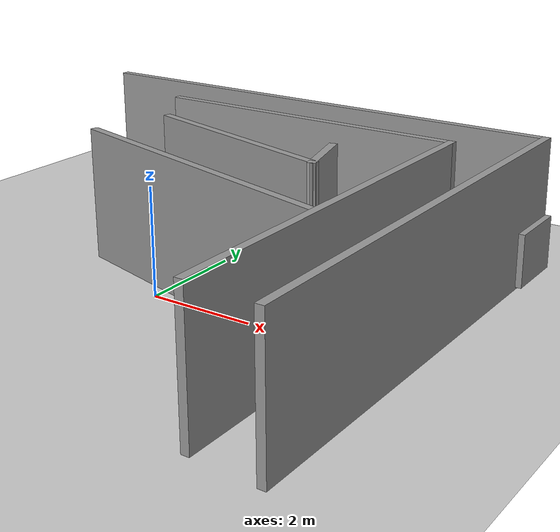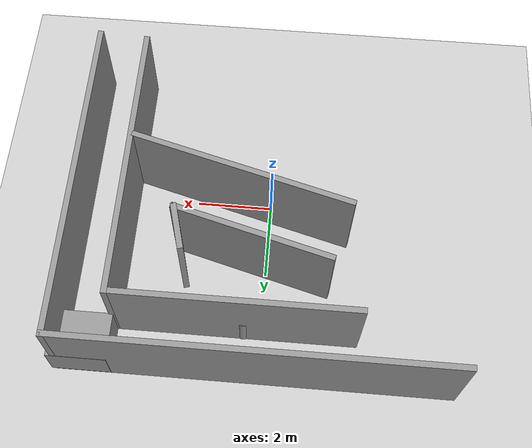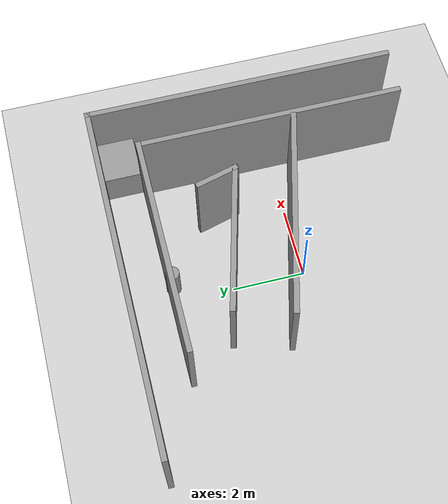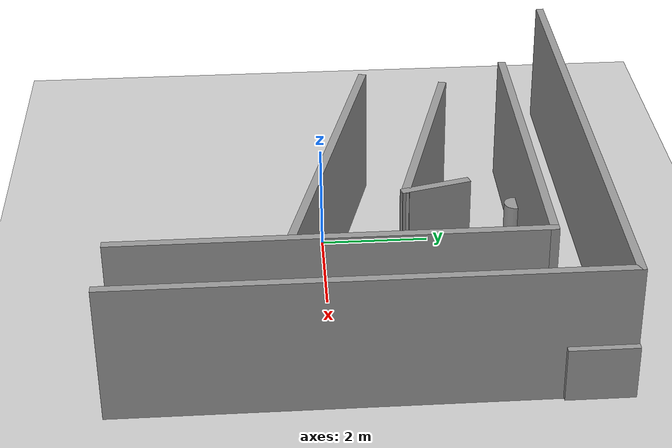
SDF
<sdf version="1.7">
 <world name="default">
  <model name="ground_plane">
   <static>1</static>
   <link name="link">
    <collision name="collision">
     <geometry><plane><normal>0 0 1</normal><size>100 100</size></plane></geometry>
     <surface>
      <contact><collide_bitmask>65535</collide_bitmask></contact>
      <friction><ode><mu>100</mu><mu2>50</mu2></ode></friction>
     </surface>
    </collision>
    <visual name="visual">
     <cast_shadows>0</cast_shadows>
     <geometry><plane><normal>0 0 1</normal><size>100 100</size></plane></geometry>
     <material>
      <script><uri>file://media/materials/scripts/gazebo.material</uri><name>Gazebo/Grey</name></script>
     </material>
    </visual>
   </link>
  </model>
  <model name="map10x10">
   <pose>0.061304 -0.054192 0 0 -0 0</pose>
   <link name="Wall_21">
    <collision name="Wall_21_Collision">
     <geometry><box><size>10 0.15 2.5</size></box></geometry>
     <pose>0 0 1.25 0 -0 0</pose>
    </collision>
    <visual name="Wall_21_Visual">
     <pose>0 0 1.25 0 -0 0</pose>
     <geometry><box><size>10 0.15 2.5</size></box></geometry>
     <material>
      <script><uri>file://media/materials/scripts/gazebo.material</uri><name>Gazebo/Grey</name></script>
      <ambient>1 1 1 1</ambient>
     </material>
     <meta><layer>0</layer></meta>
    </visual>
    <pose>0 4.925 0 0 -0 0</pose>
   </link>
   <link name="Wall_22">
    <collision name="Wall_22_Collision">
     <geometry><box><size>8.75 0.15 2.5</size></box></geometry>
     <pose>0 0 1.25 0 -0 0</pose>
    </collision>
    <visual name="Wall_22_Visual">
     <pose>0 0 1.25 0 -0 0</pose>
     <geometry><box><size>8.75 0.15 2.5</size></box></geometry>
     <material>
      <script><uri>file://media/materials/scripts/gazebo.material</uri><name>Gazebo/Grey</name></script>
      <ambient>1 1 1 1</ambient>
     </material>
     <meta><layer>0</layer></meta>
    </visual>
    <pose>4.925 0.625 0 0 -0 -1.5708</pose>
   </link>
   <link name="Wall_42">
    <collision name="Wall_42_Collision">
     <geometry><box><size>7.5 0.15 2.5</size></box></geometry>
     <pose>0 0 1.25 0 -0 0</pose>
    </collision>
    <visual name="Wall_42_Visual">
     <pose>0 0 1.25 0 -0 0</pose>
     <geometry><box><size>7.5 0.15 2.5</size></box></geometry>
     <material>
      <script><uri>file://media/materials/scripts/gazebo.material</uri><name>Gazebo/Grey</name></script>
      <ambient>1 1 1 1</ambient>
     </material>
     <meta><layer>0</layer></meta>
    </visual>
    <pose>3.64379 0.082983 0 0 -0 1.5708</pose>
   </link>
   <link name="Wall_55">
    <collision name="Wall_55_Collision">
     <geometry><box><size>6.25 0.15 2.5</size></box></geometry>
     <pose>0 0 1.25 0 -0 0</pose>
    </collision>
    <visual name="Wall_55_Visual">
     <pose>0 0 1.25 0 -0 0</pose>
     <geometry><box><size>6.25 0.15 2.5</size></box></geometry>
     <material>
      <script><uri>file://media/materials/scripts/gazebo.material</uri><name>Gazebo/Grey</name></script>
      <ambient>1 1 1 1</ambient>
     </material>
     <meta><layer>0</layer></meta>
    </visual>
    <pose>0.593791 3.75798 0 0 -0 3.14159</pose>
   </link>
   <link name="Wall_58">
    <collision name="Wall_58_Collision">
     <geometry><box><size>1.25 0.15 2.5</size></box></geometry>
     <pose>0 0 1.25 0 -0 0</pose>
    </collision>
    <visual name="Wall_58_Visual">
     <pose>0 0 1.25 0 -0 0</pose>
     <geometry><box><size>1.25 0.15 2.5</size></box></geometry>
     <material>
      <script><uri>file://media/materials/scripts/gazebo.material</uri><name>Gazebo/Grey</name></script>
      <ambient>1 1 1 1</ambient>
     </material>
     <meta><layer>0</layer></meta>
    </visual>
    <pose>2.15089 1.94157 0 0 -0 -1.309</pose>
   </link>
   <link name="Wall_59">
    <collision name="Wall_59_Collision">
     <geometry><box><size>4.25 0.15 2.5</size></box></geometry>
     <pose>0 0 1.25 0 -0 0</pose>
    </collision>
    <visual name="Wall_59_Visual">
     <pose>0 0 1.25 0 -0 0</pose>
     <geometry><box><size>4.25 0.15 2.5</size></box></geometry>
     <material>
      <script><uri>file://media/materials/scripts/gazebo.material</uri><name>Gazebo/Grey</name></script>
      <ambient>1 1 1 1</ambient>
     </material>
     <meta><layer>0</layer></meta>
    </visual>
    <pose>0.31309 1.94089 0 0 -0 2.87979</pose>
   </link>
   <link name="Wall_61">
    <collision name="Wall_61_Collision">
     <geometry><box><size>6 0.15 2.5</size></box></geometry>
     <pose>0 0 1.25 0 -0 0</pose>
    </collision>
    <visual name="Wall_61_Visual">
     <pose>0 0 1.25 0 -0 0</pose>
     <geometry><box><size>6 0.15 2.5</size></box></geometry>
     <material>
      <script><uri>file://media/materials/scripts/gazebo.material</uri><name>Gazebo/Grey</name></script>
      <ambient>1 1 1 1</ambient>
     </material>
     <meta><layer>0</layer></meta>
    </visual>
    <pose>0.712057 0.197452 0 0 -0 2.87979</pose>
   </link>
   <static>1</static>
  </model>
  <model name="boxstair2">
   <link name="link">
    <inertial>
     <mass>1</mass>
     <inertia>
      <ixx>0.166667</ixx>
      <ixy>0</ixy>
      <ixz>0</ixz>
      <iyy>0.166667</iyy>
      <iyz>0</iyz>
      <izz>0.166667</izz>
     </inertia>
    </inertial>
    <visual name="visual">
     <geometry><box><size>1.5 1.2 1</size></box></geometry>
     <material>
      <script><name>Gazebo/Grey</name><uri>file://media/materials/scripts/gazebo.material</uri></script>
      <shader type="pixel"><normal_map>__default__</normal_map></shader>
      <ambient>0.3 0.3 0.3 1</ambient>
      <diffuse>0.7 0.7 0.7 1</diffuse>
      <specular>0.01 0.01 0.01 1</specular>
      <emissive>0 0 0 1</emissive>
     </material>
    </visual>
    <collision name="collision">
     <geometry><box><size>1.5 1.2 1</size></box></geometry>
     <surface>
      <friction>
       <ode><mu>1</mu><mu2>1</mu2><fdir1>0 0 0</fdir1><slip1>0</slip1><slip2>0</slip2></ode>
       <torsional>
        <coefficient>1</coefficient>
        <patch_radius>0</patch_radius>
        <surface_radius>0</surface_radius>
        <use_patch_radius>1</use_patch_radius>
        <ode><slip>0</slip></ode>
       </torsional>
      </friction>
      <bounce><restitution_coefficient>0</restitution_coefficient><threshold>1e+06</threshold></bounce>
      <contact>
       <collide_without_contact>0</collide_without_contact>
       <collide_without_contact_bitmask>1</collide_without_contact_bitmask>
       <collide_bitmask>1</collide_bitmask>
       <ode>
        <soft_cfm>0</soft_cfm>
        <soft_erp>0.2</soft_erp>
        <kp>1e+13</kp>
        <kd>1</kd>
        <max_vel>0.01</max_vel>
        <min_depth>0</min_depth>
       </ode>
       <bullet>
        <split_impulse>1</split_impulse>
        <split_impulse_penetration_threshold>-0.01</split_impulse_penetration_threshold>
        <soft_cfm>0</soft_cfm>
        <soft_erp>0.2</soft_erp>
        <kp>1e+13</kp>
        <kd>1</kd>
       </bullet>
      </contact>
     </surface>
    </collision>
   </link>
   <static>1</static>
   <pose>4.42769 4.35358 0.550387 0 -0 0</pose>
  </model>
  <model name="obstacle1_clone_clone_0">
   <link name="link">
    <inertial>
     <mass>1</mass>
     <inertia><ixx>0.145833</ixx><ixy>0</ixy><ixz>0</ixz><iyy>0.145833</iyy><iyz>0</iyz><izz>0.125</izz></inertia>
    </inertial>
    <visual name="visual">
     <geometry><cylinder><radius>0.2</radius><length>1</length></cylinder></geometry>
     <material>
      <script><name>Gazebo/Grey</name><uri>file://media/materials/scripts/gazebo.material</uri></script>
      <shader type="pixel"><normal_map>__default__</normal_map></shader>
      <ambient>0.3 0.3 0.3 1</ambient>
      <diffuse>0.7 0.7 0.7 1</diffuse>
      <specular>0.01 0.01 0.01 1</specular>
      <emissive>0 0 0 1</emissive>
     </material>
    </visual>
    <collision name="collision">
     <geometry><cylinder><radius>0.2</radius><length>1</length></cylinder></geometry>
     <surface>
      <friction>
       <ode><mu>1</mu><mu2>1</mu2><fdir1>0 0 0</fdir1><slip1>0</slip1><slip2>0</slip2></ode>
       <torsional>
        <coefficient>1</coefficient>
        <patch_radius>0</patch_radius>
        <surface_radius>0</surface_radius>
        <use_patch_radius>1</use_patch_radius>
        <ode><slip>0</slip></ode>
       </torsional>
      </friction>
      <bounce><restitution_coefficient>0</restitution_coefficient><threshold>1e+06</threshold></bounce>
      <contact>
       <collide_without_contact>0</collide_without_contact>
       <collide_without_contact_bitmask>1</collide_without_contact_bitmask>
       <collide_bitmask>1</collide_bitmask>
       <ode>
        <soft_cfm>0</soft_cfm>
        <soft_erp>0.2</soft_erp>
        <kp>1e+13</kp>
        <kd>1</kd>
        <max_vel>0.01</max_vel>
        <min_depth>0</min_depth>
       </ode>
       <bullet>
        <split_impulse>1</split_impulse>
        <split_impulse_penetration_threshold>-0.01</split_impulse_penetration_threshold>
        <soft_cfm>0</soft_cfm>
        <soft_erp>0.2</soft_erp>
        <kp>1e+13</kp>
        <kd>1</kd>
       </bullet>
      </contact>
     </surface>
    </collision>
   </link>
   <static>1</static>
   <pose>0.443455 3.59898 0.5 0 -0 0</pose>
  </model>
 </world>
</sdf>
